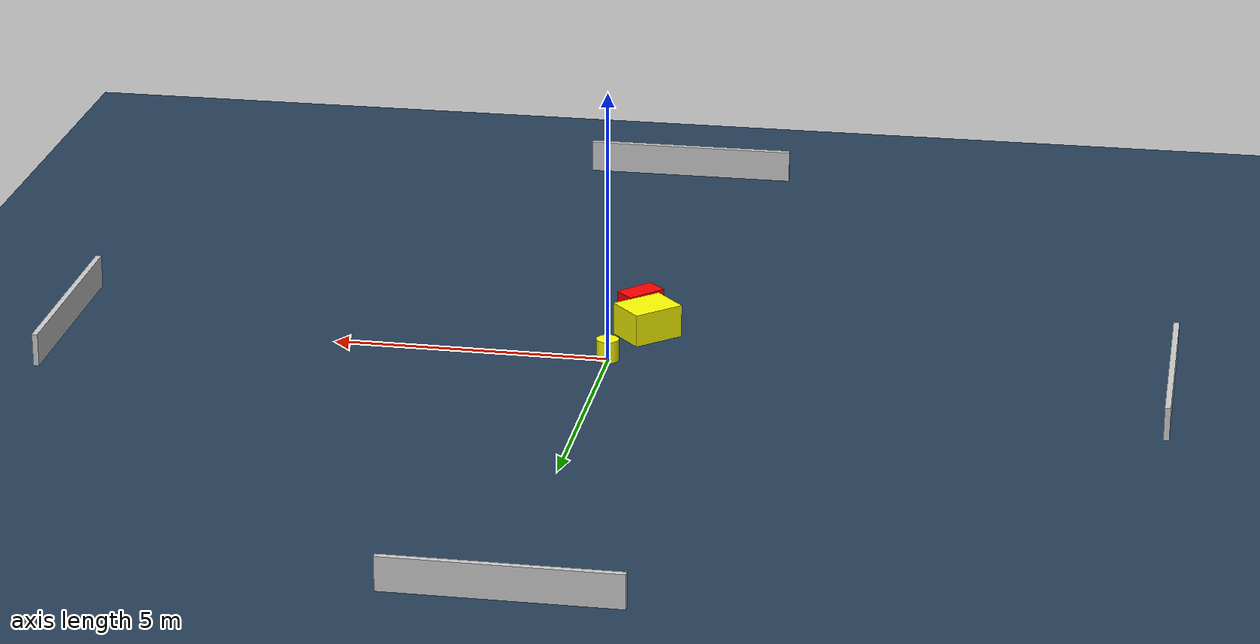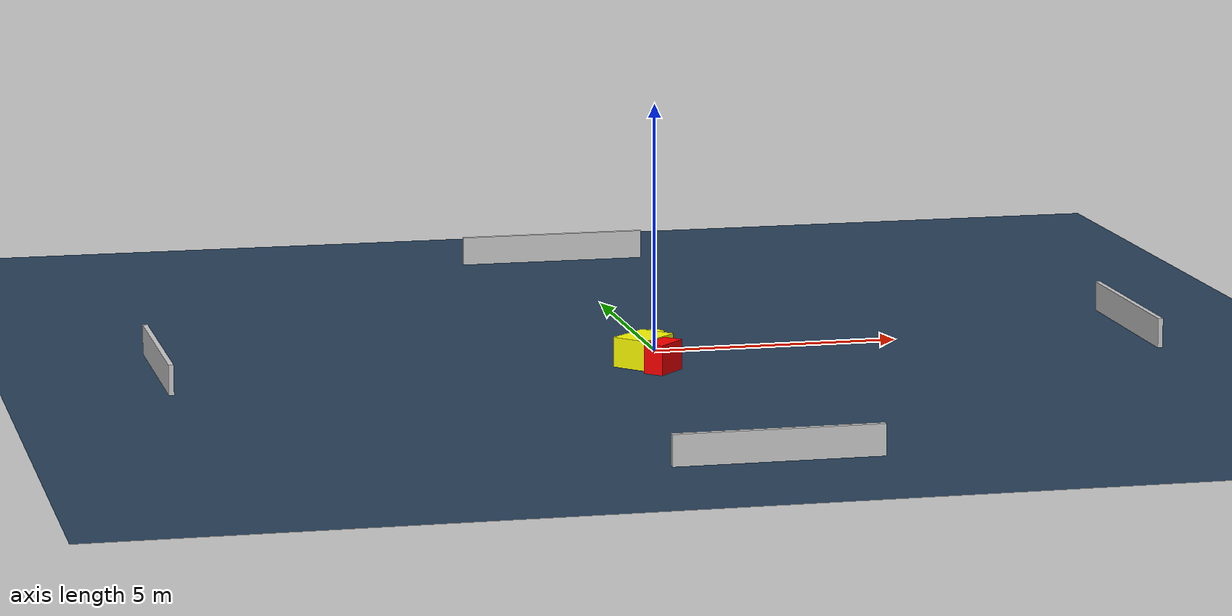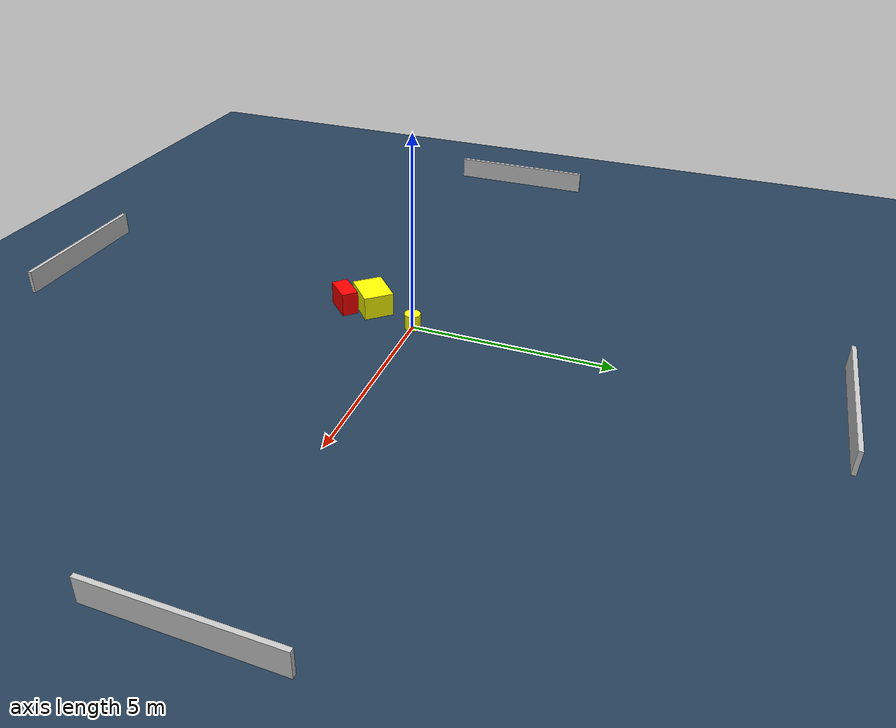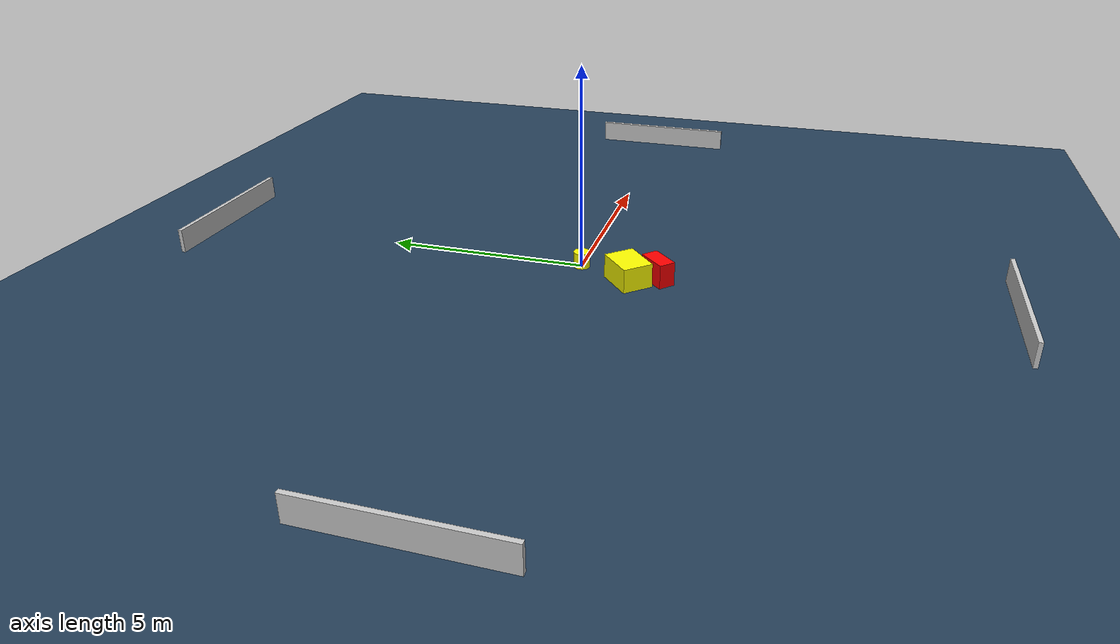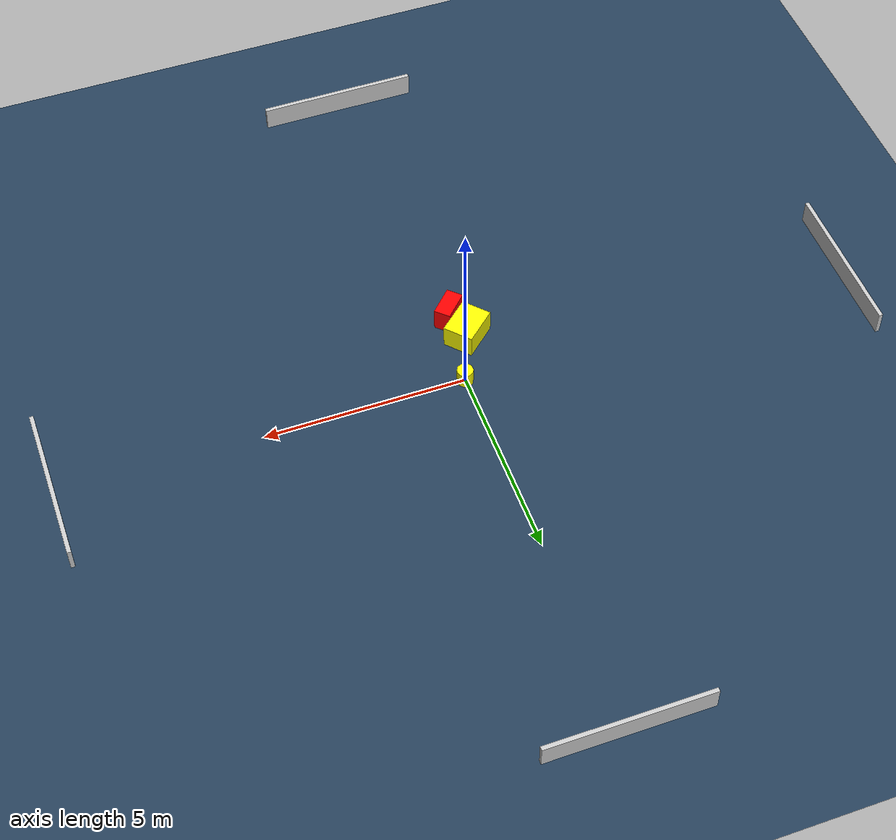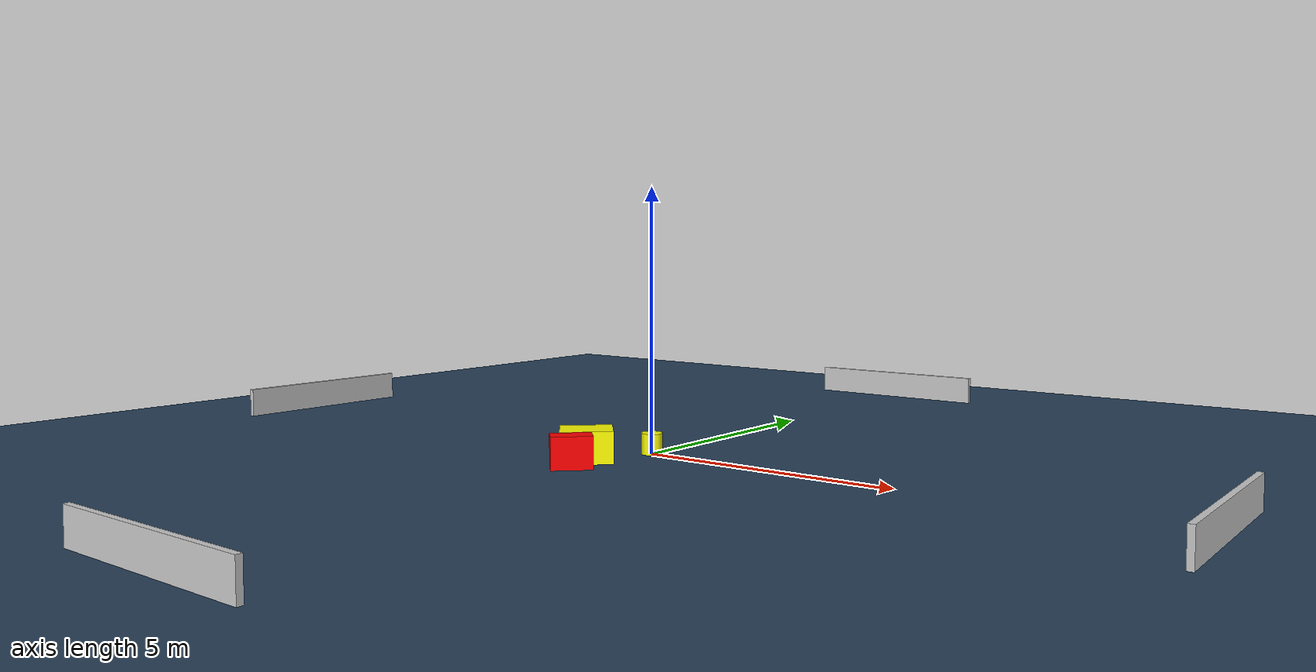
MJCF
<?xml version="1.0" ?>
<mujoco model="generated_environment">
  <option timestep="0.01" integrator="RK4" cone="elliptic"/>
  <default>
    <geom density="1"/>
  </default>
  <asset>
    <texture builtin="gradient" height="3072" name="skybox" rgb1="0.3 0.5 0.7" rgb2="0 0 0" type="skybox" width="512"/>
    <texture builtin="checker" height="300" name="groundplane" rgb1="0.2 0.3 0.4" rgb2="0.1 0.2 0.3" type="2d" width="300"/>
    <material name="groundplane" reflectance="0.2" texrepeat="5 5" texture="groundplane"/>
  </asset>
  <worldbody>
    <light dir="0 0 -1" directional="true" pos="0 0 1.5"/>
    <geom condim="3" friction="0.5 0.005 0.001" material="groundplane" name="floor" pos="0 0 0" size="0 0 0.05" type="plane"/>
    <body name="walls">
      <geom name="wall_1" condim="4" pos="-10.0 0.0 0.3" rgba="0.800000011920929 0.800000011920929 0.800000011920929 1.0" size="0.05 2.0 0.3" type="box"/>
      <geom name="wall_2" condim="4" pos="10.0 0.0 0.3" rgba="0.800000011920929 0.800000011920929 0.800000011920929 1.0" size="0.05 2.0 0.3" type="box"/>
      <geom name="wall_3" condim="4" pos="0.0 -10.0 0.3" rgba="0.800000011920929 0.800000011920929 0.800000011920929 1.0" size="2.0 0.05 0.3" type="box"/>
      <geom name="wall_4" condim="4" pos="0.0 10.0 0.3" rgba="0.800000011920929 0.800000011920929 0.800000011920929 1.0" size="2.0 0.05 0.3" type="box"/>
    </body>
    <body name="robot">
      <joint name="joint_x" type="slide" pos="0 0 0" axis="1 0 0"/>
      <joint name="joint_y" type="slide" pos="0 0 0" axis="0 1 0"/>
      <geom name="robot" type="cylinder" pos="0.0 0.0 0.2" size="0.2 0.2 0.0" mass="5.0" friction="1.0 0.005 0.0001" condim="4" rgba="1.0 1.0 0.0 1.0"/>
    </body>
    <body name="obstacle_1_movable">
      <geom name="obstacle_1_movable" condim="4" pos="-0.517521352483407 -1.284629568045431 0.3" euler="0 0 41.882411006921174" friction="0.0 0.005 0.001" rgba="1.0 1.0 0.0 1.0" size="0.48685854832113956 0.379973722560928 0.3" type="box" mass="0.1"/>
      <joint type="free"/>
    </body>
    <body name="obstacle_2_static">
      <geom name="obstacle_2_static" condim="4" pos="-0.27942588758008347 -1.9586912738277251 0.3" euler="0 0 135.7137021367955" friction="0.0 0.005 0.001" rgba="1.0 0.0 0.0 1.0" size="0.20754790336052434 0.3790436231370465 0.3" type="box"/>
    </body>
  </worldbody>
  <actuator>
    <motor name="actuator_x" joint="joint_x" gear="1" ctrlrange="-1 1"/>
    <motor name="actuator_y" joint="joint_y" gear="1" ctrlrange="-1 1"/>
  </actuator>
</mujoco>
